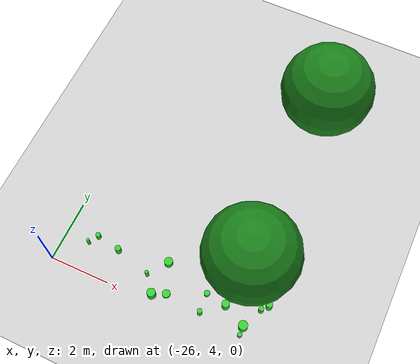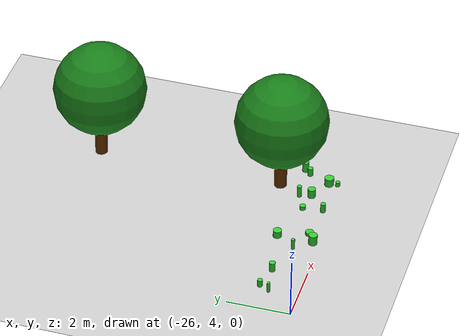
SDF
<sdf version="1.6">
 <world name="street_park_world">
  <include><uri>model://sun</uri></include>
  <include><uri>model://ground_plane</uri></include>
  <model name="tree_8">
   <pose>-20 6 0 0 0 0</pose>
   <static>true</static>
   <link name="trunk">
    <pose>0 0 1 0 0 0</pose>
    <collision name="collision">
     <geometry><cylinder><radius>0.2</radius><length>2</length></cylinder></geometry>
    </collision>
    <visual name="visual">
     <geometry><cylinder><radius>0.2</radius><length>2</length></cylinder></geometry>
     <material><ambient>0.4 0.2 0.0 1</ambient></material>
    </visual>
   </link>
   <link name="leaves">
    <pose>0 0 2.5 0 0 0</pose>
    <collision name="collision"><geometry><sphere><radius>1.5</radius></sphere></geometry></collision>
    <visual name="visual">
     <geometry><sphere><radius>1.5</radius></sphere></geometry>
     <material><ambient>0.1 0.5 0.1 1</ambient></material>
    </visual>
   </link>
  </model>
  <model name="tree_10">
   <pose>-20 12 0 0 0 0</pose>
   <static>true</static>
   <link name="trunk">
    <pose>0 0 1 0 0 0</pose>
    <collision name="collision">
     <geometry><cylinder><radius>0.2</radius><length>2</length></cylinder></geometry>
    </collision>
    <visual name="visual">
     <geometry><cylinder><radius>0.2</radius><length>2</length></cylinder></geometry>
     <material><ambient>0.4 0.2 0.0 1</ambient></material>
    </visual>
   </link>
   <link name="leaves">
    <pose>0 0 2.5 0 0 0</pose>
    <collision name="collision"><geometry><sphere><radius>1.5</radius></sphere></geometry></collision>
    <visual name="visual">
     <geometry><sphere><radius>1.5</radius></sphere></geometry>
     <material><ambient>0.1 0.5 0.1 1</ambient></material>
    </visual>
   </link>
  </model>
  <model name="weed_4">
   <pose>-25.160344016337298 4.924971957426272 0.17141456850167403 0 0 0</pose>
   <static>true</static>
   <link name="link">
    <collision name="collision">
     <geometry>
      <cylinder><radius>0.0506498759678061</radius><length>0.34282913700334805</length></cylinder>
     </geometry>
    </collision>
    <visual name="visual">
     <geometry>
      <cylinder><radius>0.0506498759678061</radius><length>0.34282913700334805</length></cylinder>
     </geometry>
     <material><ambient>0.2 0.8 0.2 1</ambient></material>
    </visual>
   </link>
  </model>
  <model name="weed_26">
   <pose>-20.98573290427115 4.997346518011732 0.06673282603938147 0 0 0</pose>
   <static>true</static>
   <link name="link">
    <collision name="collision">
     <geometry>
      <cylinder><radius>0.0934765250669105</radius><length>0.13346565207876293</length></cylinder>
     </geometry>
    </collision>
    <visual name="visual">
     <geometry>
      <cylinder><radius>0.0934765250669105</radius><length>0.13346565207876293</length></cylinder>
     </geometry>
     <material><ambient>0.2 0.8 0.2 1</ambient></material>
    </visual>
   </link>
  </model>
  <model name="weed_48">
   <pose>-22.517419690610957 5.392571838986418 0.11646961175801855 0 0 0</pose>
   <static>true</static>
   <link name="link">
    <collision name="collision">
     <geometry>
      <cylinder><radius>0.13613491047618304</radius><length>0.2329392235160371</length></cylinder>
     </geometry>
    </collision>
    <visual name="visual">
     <geometry>
      <cylinder><radius>0.13613491047618304</radius><length>0.2329392235160371</length></cylinder>
     </geometry>
     <material><ambient>0.2 0.8 0.2 1</ambient></material>
    </visual>
   </link>
  </model>
  <model name="weed_78">
   <pose>-22.5423234699368 4.243911070340499 0.1670174362807164 0 0 0</pose>
   <static>true</static>
   <link name="link">
    <collision name="collision">
     <geometry>
      <cylinder><radius>0.1384134701451009</radius><length>0.3340348725614328</length></cylinder>
     </geometry>
    </collision>
    <visual name="visual">
     <geometry>
      <cylinder><radius>0.1384134701451009</radius><length>0.3340348725614328</length></cylinder>
     </geometry>
     <material><ambient>0.2 0.8 0.2 1</ambient></material>
    </visual>
   </link>
  </model>
  <model name="weed_84">
   <pose>-24.9809654208902 5.2432212478357005 0.11904548520184133 0 0 0</pose>
   <static>true</static>
   <link name="link">
    <collision name="collision">
     <geometry>
      <cylinder><radius>0.08051908673386006</radius><length>0.23809097040368266</length></cylinder>
     </geometry>
    </collision>
    <visual name="visual">
     <geometry>
      <cylinder><radius>0.08051908673386006</radius><length>0.23809097040368266</length></cylinder>
     </geometry>
     <material><ambient>0.2 0.8 0.2 1</ambient></material>
    </visual>
   </link>
  </model>
  <model name="weed_104">
   <pose>-22.964171032948485 4.765190881906327 0.17746065419370982 0 0 0</pose>
   <static>true</static>
   <link name="link">
    <collision name="collision">
     <geometry>
      <cylinder><radius>0.05728282291845691</radius><length>0.35492130838741964</length></cylinder>
     </geometry>
    </collision>
    <visual name="visual">
     <geometry>
      <cylinder><radius>0.05728282291845691</radius><length>0.35492130838741964</length></cylinder>
     </geometry>
     <material><ambient>0.2 0.8 0.2 1</ambient></material>
    </visual>
   </link>
  </model>
  <model name="weed_158">
   <pose>-19.53011670525405 4.240736551327107 0.07911763671366102 0 0 0</pose>
   <static>true</static>
   <link name="link">
    <collision name="collision">
     <geometry>
      <cylinder><radius>0.07274831634825547</radius><length>0.15823527342732205</length></cylinder>
     </geometry>
    </collision>
    <visual name="visual">
     <geometry>
      <cylinder><radius>0.07274831634825547</radius><length>0.15823527342732205</length></cylinder>
     </geometry>
     <material><ambient>0.2 0.8 0.2 1</ambient></material>
    </visual>
   </link>
  </model>
  <model name="weed_172">
   <pose>-24.167138889957673 5.089738161830646 0.15544813371405758 0 0 0</pose>
   <static>true</static>
   <link name="link">
    <collision name="collision">
     <geometry>
      <cylinder><radius>0.09540313264070432</radius><length>0.31089626742811516</length></cylinder>
     </geometry>
    </collision>
    <visual name="visual">
     <geometry>
      <cylinder><radius>0.09540313264070432</radius><length>0.31089626742811516</length></cylinder>
     </geometry>
     <material><ambient>0.2 0.8 0.2 1</ambient></material>
    </visual>
   </link>
  </model>
  <model name="weed_186">
   <pose>-19.06039841746898 5.423270955388495 0.17203490521069592 0 0 0</pose>
   <static>true</static>
   <link name="link">
    <collision name="collision">
     <geometry>
      <cylinder><radius>0.10500966089717828</radius><length>0.34406981042139184</length></cylinder>
     </geometry>
    </collision>
    <visual name="visual">
     <geometry>
      <cylinder><radius>0.10500966089717828</radius><length>0.34406981042139184</length></cylinder>
     </geometry>
     <material><ambient>0.2 0.8 0.2 1</ambient></material>
    </visual>
   </link>
  </model>
  <model name="weed_196">
   <pose>-20.391759295805322 5.268613523807372 0.19703669489050635 0 0 0</pose>
   <static>true</static>
   <link name="link">
    <collision name="collision">
     <geometry>
      <cylinder><radius>0.07437309060751383</radius><length>0.3940733897810127</length></cylinder>
     </geometry>
    </collision>
    <visual name="visual">
     <geometry>
      <cylinder><radius>0.07437309060751383</radius><length>0.3940733897810127</length></cylinder>
     </geometry>
     <material><ambient>0.2 0.8 0.2 1</ambient></material>
    </visual>
   </link>
  </model>
  <model name="weed_200">
   <pose>-19.544491504545604 4.517978189680473 0.13804065836212417 0 0 0</pose>
   <static>true</static>
   <link name="link">
    <collision name="collision">
     <geometry>
      <cylinder><radius>0.14989023332293389</radius><length>0.27608131672424835</length></cylinder>
     </geometry>
    </collision>
    <visual name="visual">
     <geometry>
      <cylinder><radius>0.14989023332293389</radius><length>0.27608131672424835</length></cylinder>
     </geometry>
     <material><ambient>0.2 0.8 0.2 1</ambient></material>
    </visual>
   </link>
  </model>
  <model name="weed_220">
   <pose>-22.142039452781194 4.457457391422816 0.05140961471823066 0 0 0</pose>
   <static>true</static>
   <link name="link">
    <collision name="collision">
     <geometry>
      <cylinder><radius>0.13046330769751463</radius><length>0.10281922943646132</length></cylinder>
     </geometry>
    </collision>
    <visual name="visual">
     <geometry>
      <cylinder><radius>0.13046330769751463</radius><length>0.10281922943646132</length></cylinder>
     </geometry>
     <material><ambient>0.2 0.8 0.2 1</ambient></material>
    </visual>
   </link>
  </model>
  <model name="weed_226">
   <pose>-20.296765783959504 4.892300623737978 0.15286992391010185 0 0 0</pose>
   <static>true</static>
   <link name="link">
    <collision name="collision">
     <geometry>
      <cylinder><radius>0.12446688411653252</radius><length>0.3057398478202037</length></cylinder>
     </geometry>
    </collision>
    <visual name="visual">
     <geometry>
      <cylinder><radius>0.12446688411653252</radius><length>0.3057398478202037</length></cylinder>
     </geometry>
     <material><ambient>0.2 0.8 0.2 1</ambient></material>
    </visual>
   </link>
  </model>
  <model name="weed_228">
   <pose>-19.242526368672497 5.218404167310638 0.14105974972463992 0 0 0</pose>
   <static>true</static>
   <link name="link">
    <collision name="collision">
     <geometry>
      <cylinder><radius>0.08523209558353165</radius><length>0.28211949944927983</length></cylinder>
     </geometry>
    </collision>
    <visual name="visual">
     <geometry>
      <cylinder><radius>0.08523209558353165</radius><length>0.28211949944927983</length></cylinder>
     </geometry>
     <material><ambient>0.2 0.8 0.2 1</ambient></material>
    </visual>
   </link>
  </model>
  <model name="weed_282">
   <pose>-20.92970473613004 4.3525825007451955 0.15540481592984073 0 0 0</pose>
   <static>true</static>
   <link name="link">
    <collision name="collision">
     <geometry>
      <cylinder><radius>0.08089846888299101</radius><length>0.31080963185968147</length></cylinder>
     </geometry>
    </collision>
    <visual name="visual">
     <geometry>
      <cylinder><radius>0.08089846888299101</radius><length>0.31080963185968147</length></cylinder>
     </geometry>
     <material><ambient>0.2 0.8 0.2 1</ambient></material>
    </visual>
   </link>
  </model>
 </world>
</sdf>
